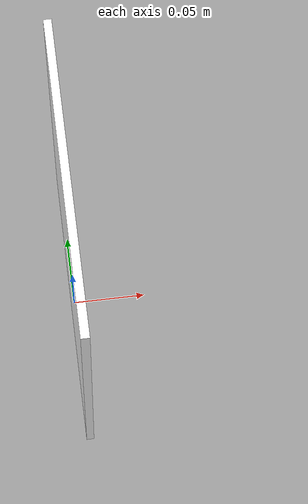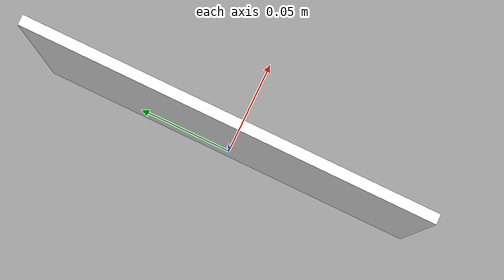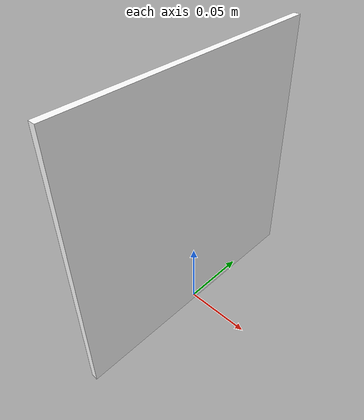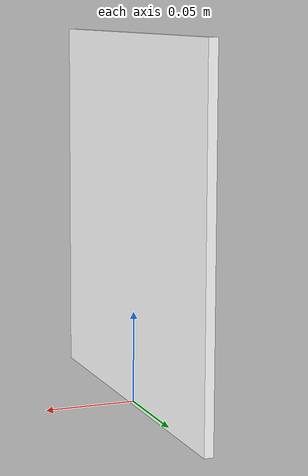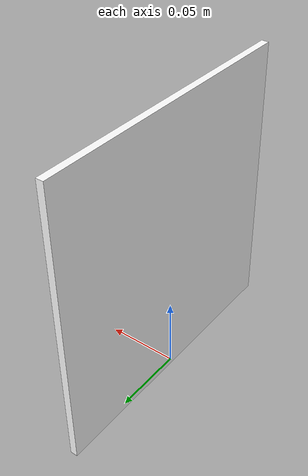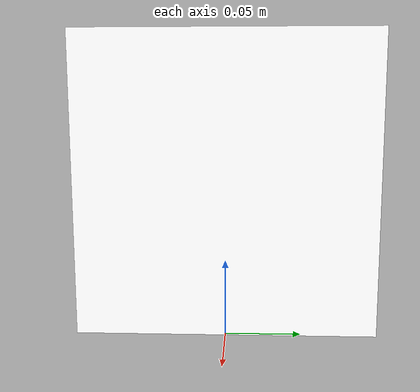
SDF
<?xml version="1.0"?>
<sdf version="1.9">
  <model name="apriltag_36h11_0">
    <static>true</static>

    <link name="tag_link">
      <!-- A thin upright backing gives the marker visible front and back faces. -->
      <visual name="tag_visual">
        <pose>0 0 0.10 0 0 0</pose>
        <cast_shadows>false</cast_shadows>
        <geometry>
          <box>
            <size>0.005 0.20 0.20</size>
          </box>
        </geometry>
        <material>
          <lighting>true</lighting>
          <ambient>1 1 1 1</ambient>
          <diffuse>1 1 1 1</diffuse>
          <specular>0 0 0 1</specular>
          <pbr>
            <metal>
              <albedo_map>materials/textures/tag36_11_00000_rgb.png</albedo_map>
              <metalness>0</metalness>
              <roughness>1</roughness>
            </metal>
          </pbr>
        </material>
      </visual>

      <collision name="tag_collision">
        <pose>0 0 0.10 0 0 0</pose>
        <geometry>
          <box>
            <size>0.005 0.20 0.20</size>
          </box>
        </geometry>
      </collision>
    </link>
  </model>
</sdf>
